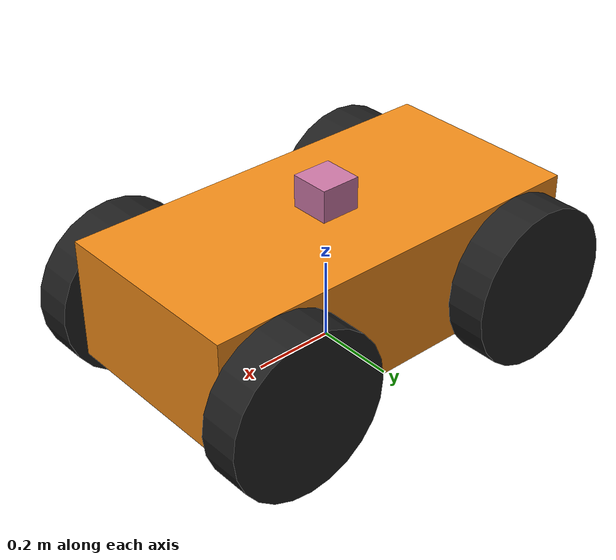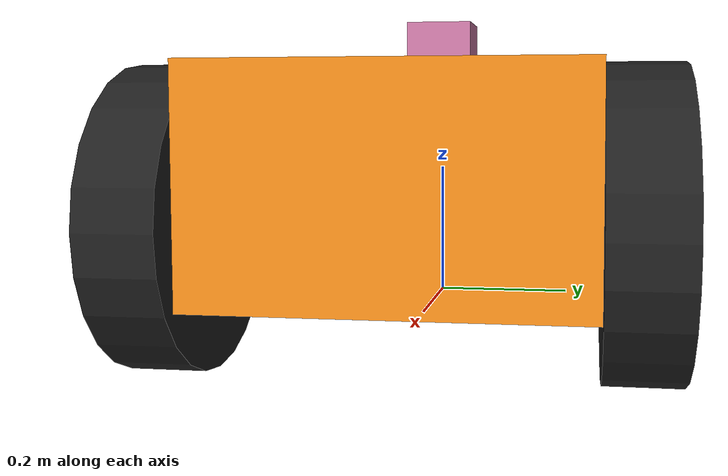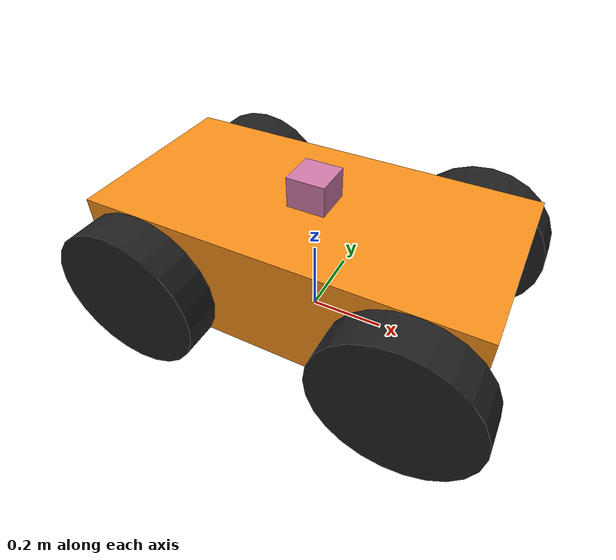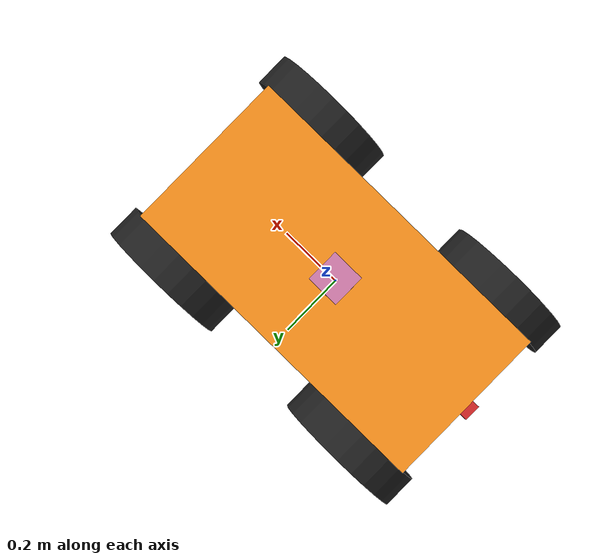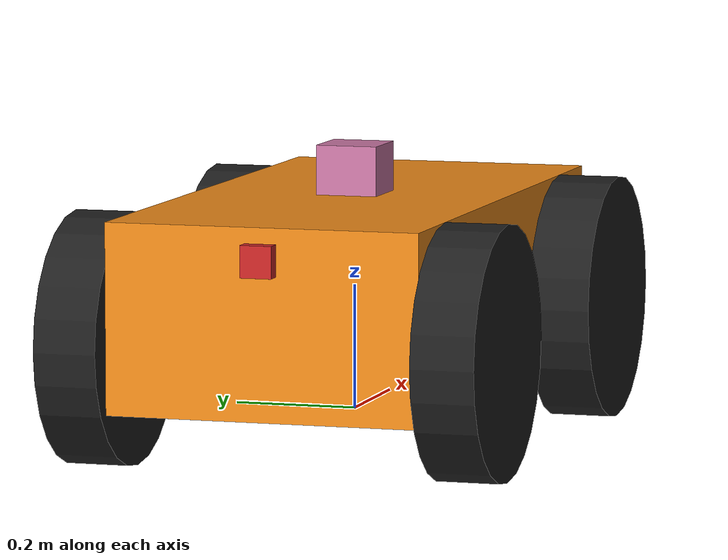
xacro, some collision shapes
<?xml version="1.0"?>
<robot xmlns:xacro="http://www.ros.org/wiki/xacro" name="rob">

<!-- Including plugins and material files -->
<xacro:include filename="$(find robot_struct)/urdf/materials.gazebo"/>
<xacro:include filename="$(find robot_struct)/urdf/plugins.gazebo"/>

<!--  Chassis link -->
    <link name="base_link">
        <visual>
            <origin rpy="0  0  0" xyz="0  0  0.2"/>
            <geometry>
                <box size="1 0.5 0.3"/>
            </geometry>
        </visual>
        <collision>
            <origin rpy="0 0 0" xyz="0 0 0.2"/>
            <geometry>
                <box size="1 0.5 0.3"/>
            </geometry>
        </collision>
        <inertial>
            <mass value="1"/>
            <origin rpy="0  0  0" xyz="0  0  0.2"/>
            <inertia ixx="0.166667" ixy="0" ixz="0" iyy="0.166667" iyz="0" izz="0.166667"/>
        </inertial>
    </link>

<!-- Wheel link macro -->
<xacro:macro name="wheels" params="name">
    <link name="${name}">
        <inertial>
            <mass value="0.01"/>
            <origin xyz="0 0 0" rpy="0 0 0"/>
            <inertia ixx="0.01" ixy="0.0" ixz="0.0" iyy="0.01" iyz="0.0" izz="0.01"/>
        </inertial>
        <visual>
            <origin xyz="0 0 0" rpy="0 0 0"/>
            <geometry>
                <cylinder radius="0.2" length="0.1" />
            </geometry>
        </visual>
        <collision>
            <origin xyz="0 0 0" rpy="0 0 0"/>
            <geometry>
                <cylinder radius="0.2" length="0.1" />
            </geometry>
        </collision>
    </link>
</xacro:macro>
<!-- Wheels -->
<xacro:wheels name="f_left"/>
<xacro:wheels name="f_right"/>
<xacro:wheels name="b_left"/>
<xacro:wheels name="b_right"/>

<!-- Wheel joints macro -->
<xacro:macro name="wheel_joints" params="num link x y">
    <joint name="j_s${num}" type="continuous">
        <parent link="base_link"/>
        <child link="${link}"/>
        <origin xyz= "${x} ${y} 0.15" rpy="1.5708 0 0"/>
        <axis xyz="0 0 0.4" rpy="0 0 0"/>
    </joint>
</xacro:macro>
<!-- Wheel joints -->
<xacro:wheel_joints num="1" link="f_left" x="0.35" y="0.3"/>
<xacro:wheel_joints num="2" link="f_right" x="0.35" y="-0.3"/>
<xacro:wheel_joints num="3" link="b_left" x="-0.35" y="0.3"/>
<xacro:wheel_joints num="4" link="b_right" x="-0.35" y="-0.3"/>

 <!-- Camera Link -->
  <xacro:property name="camera_link" value="0.05" />
  <link name="camera_link">
    <collision>
      <origin xyz="0 0 0" rpy="0 0 0"/>
      <geometry>
    <box size="${camera_link} ${camera_link} ${camera_link}"/>
      </geometry>
    </collision>
    <visual>
      <origin xyz="0 0 0" rpy="0 0 0"/>
      <geometry>
    <box size="${camera_link} ${camera_link} ${camera_link}"/>
      </geometry>
      <material name="red"/>
    </visual>
    <inertial>
      <mass value="1e-5" />
      <origin xyz="0 0 0" rpy="0 0 0"/>
      <inertia ixx="1e-6" ixy="0" ixz="0" iyy="1e-6" iyz="0" izz="1e-6" />
    </inertial>
  </link>
<!-- Camera joint -->
<joint name="camera_joint" type="fixed">
    <axis xyz="0 1 0" />
    <origin xyz="-0.5 0 0.3" rpy="0 0 3.14"/>
    <parent link="base_link"/>
    <child link="camera_link"/>
</joint>

<!-- Hokuyo Laser Link -->
<link name="hokuyo">
<collision>
  <origin xyz="0 0 0" rpy="0 0 0"/>
  <geometry>
<box size="0.1 0.1 0.1"/>
  </geometry>
</collision>
<visual>
  <origin xyz="0 0 0" rpy="0 0 0"/>
  <geometry>
        <mesh filename="package://robot_struct/meshes/hokuyo.dae"/>
      </geometry>
</visual>
<inertial>
  <mass value="1e-5" />
  <origin xyz="0 0 0" rpy="0 0 0"/>
  <inertia ixx="1e-6" ixy="0" ixz="0" iyy="1e-6" iyz="0" izz="1e-6" />
</inertial>
</link>
<!-- Laser joint -->
<joint name="hokuyo_joint" type="fixed">
  <axis xyz="0 1 0" />
  <origin xyz="0 0 0.38" rpy="0 0 3.14"/>
  <parent link="base_link"/>
  <child link="hokuyo"/>
</joint>

</robot>
